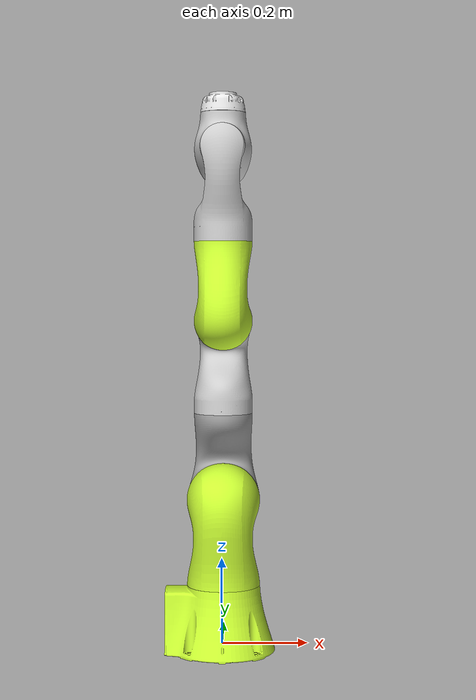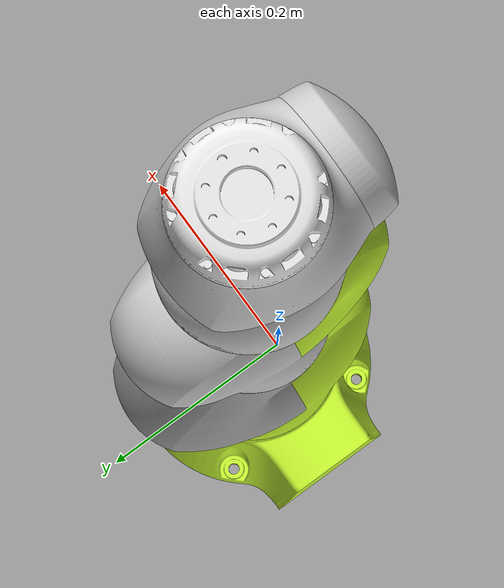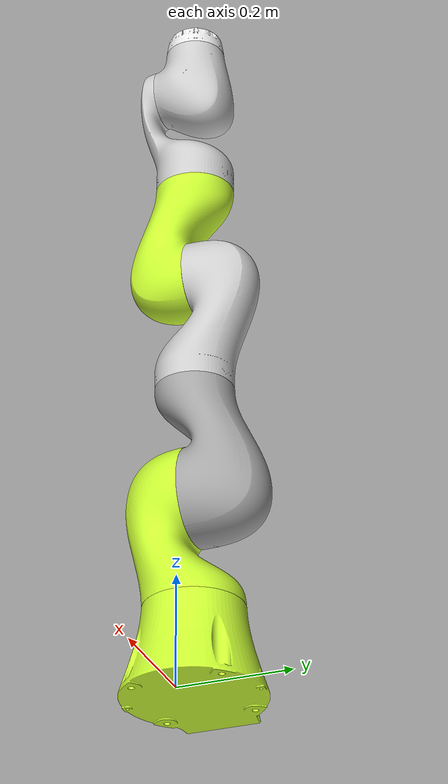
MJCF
<mujoco model="robot">
	<compiler angle="radian" autolimits="true" eulerseq="XYZ"/>
	<option integrator="implicitfast"/>
	<asset>

		<mesh file="l0.stl"/>

		<mesh file="l1.stl"/>

		<mesh file="l2.stl"/>

		<mesh file="l3.stl"/>

		<mesh file="l4.stl"/>

		<mesh file="l5.stl"/>

		<mesh file="l6.stl"/>

		<mesh file="l7.stl"/>

		<material name="electric_lime" rgba="0.8 1.0 0.2 1"/>

		<material name="quick_silver" rgba="0.6470588235294118 0.6470588235294118 0.6470588235294118 1"/>

		<material name="silver" rgba="0.8 0.8 0.8 1"/>

		<material name="mercury" rgba="0.9176470588235294 0.9176470588235294 0.9176470588235294 1"/>
	</asset>
	<default>

		<joint axis="0 0 1" type="hinge"/>

		<geom/>

		<default class="joint_1">

			<joint range="-2.9670597283903604 2.9670597283903604"/>

		</default>
		<default class="joint_2">

			<joint range="-2.0943951023931953 2.0943951023931953"/>

		</default>
	</default>
	<worldbody>
		<body name="base" pos="0 0 0" euler="0 0 0">
			<inertial pos="-0.01035107731949609 0.03192923569988471 0.04497926990549461" mass="42.98768750254656" fullinertia="0.1903988096643779 0.24204633327355346 0.2628112127972947 4.845059131105475e-07 0.005311004299230234 -5.6051717850939943e-08"/>
			<geom type="mesh" pos="0.0024707020442987435 0.031929295510053635 -0.026526075098799187" euler="0.0 -0.0 0.0" mesh="l0" material="electric_lime"/>
			<body name="l1" pos="0.0024707020442987504 0.031929295510053635 0.1209739249012008" euler="3.141592653589793 -0.0 -6.043420485784072e-29">
				<joint class="joint_1" name="dof_j11"/>
				<inertial pos="-5.48393368978954e-07 0.03379528857614718 -0.13240387649300087" mass="32.252368538058256" fullinertia="0.258902748850783 0.26120123222902636 0.09676156657994651 3.51731243466588e-07 -9.136048164140038e-07 0.03866152141693182"/>
				<geom type="mesh" pos="0.0 -1.4931491348783655e-31 0.1475" euler="3.141592653589793 -0.0 0.0" mesh="l1" material="electric_lime"/>
				<body name="l2" pos="-5.204170427930421e-18 0.010000000000000002 -0.21250000000000002" euler="-1.5707963267948966 7.888609052210118e-30 -1.1772991650719248e-29">
					<joint class="joint_2" name="dof_j21"/>
					<inertial pos="0.00015560931906714767 0.0588023202941913 -0.05198733353217853" mass="31.019952062412518" fullinertia="0.24016551405095907 0.08647868689608351 0.23878639476140753 0.00025872384255700077 0.00017829567971389603 -0.038360898454444445"/>
					<geom type="mesh" pos="0.00043624370878126394 -0.36 -0.009999999999999877" euler="-1.5707963267948966 -0.0 7.677253948883748e-59" mesh="l2" material="quick_silver"/>
					<body name="l3" pos="-2.5587171270657905e-17 0.1944999999999994 -0.010000000000000182" euler="1.5707963267948963 -1.7536292513590305e-16 -5.204170427931193e-17">
						<joint class="joint_1" name="dof_j31"/>
						<inertial pos="6.336790494515675e-07 -0.029563690547167298 -0.13650514421399274" mass="24.924609587484266" fullinertia="0.19686717680640578 0.186889631475395 0.059720985474427925 4.314951133358754e-07 1.0570799648138968e-06 -0.038258223329299595"/>
						<geom type="mesh" pos="2.168404344971009e-18 4.3018324496289725e-18 0.5545" euler="3.141592653589793 -3.498908159048841e-33 0.0" mesh="l3" material="silver"/>
						<body name="l4" pos="2.168404344971009e-18 -0.010500000000000008 -0.22549999999999903" euler="1.5707963267948966 -8.361759319911739e-32 1.875546704921647e-24">
							<joint class="joint_2" name="dof_j41"/>
							<inertial pos="1.557949561600884e-06 -0.0674206418439649 -0.044765145086959585" mass="21.505090575790533" fullinertia="0.13504568340927875 0.048185429013458916 0.12869367924899325 8.106913392334387e-07 1.8855174843996352e-07 0.02234980562131776"/>
							<geom type="mesh" pos="0.0 0.7800000000000001 -0.010500000000000013" euler="1.5707963267948966 -0.0 -1.1233243501650246e-33" mesh="l4" material="electric_lime"/>
							<body name="l5" pos="-4.336808689942018e-19 -0.17449999999999988 -0.010500000000000016" euler="-1.5707963267948966 2.0362472116017367e-29 1.5765984860918554e-30">
								<joint class="joint_1" name="dof_j51"/>
								<inertial pos="-0.00012006809820828806 0.02138958512371306 -0.08547343539791841" mass="13.294298180252586" fullinertia="0.07911396213211597 0.06830701557184746 0.035077492654825806 -1.2771822057560868e-05 5.82602920038757e-06 0.024257679034287948"/>
								<geom type="mesh" pos="2.168404344971009e-18 -2.637061458344068e-18 0.9545" euler="3.141592653589793 1.1233243501683199e-33 0.0" mesh="l5" material="silver"/>
								<body name="l6" pos="-6.505213034913027e-16 0.07069999999999989 -0.22550000000000314" euler="-1.5707963267948963 -1.807581861967825e-15 1.0378864090540576e-15">
									<joint class="joint_2" name="dof_j61"/>
									<inertial pos="-6.106347671683861e-07 0.0005734026546835302 -0.07103657781028404" mass="14.196752121138323" fullinertia="0.03841788982992332 0.027994846496755495 0.036778587792932915 6.767287473925427e-08 -5.935303711667572e-07 -0.001918455036020094"/>
									<geom type="mesh" pos="0.0 -1.18 -0.0707" euler="-1.5707963267948966 -0.0 -8.728082876802069e-32" mesh="l6" material="silver"/>
									<body name="l7" pos="4.185020385794047e-16 0.07110000000001193 -0.07070000000000101" euler="-1.570796326794896 4.3239879992521566e-15 -3.141592653589793">
										<joint name="dof_j71" range="-3.0543261909900767 3.0543261909900767"/>
										<inertial pos="3.961998951687257e-06 1.9652899206200954e-08 -0.027185443960992872" mass="2.4182903563202385" fullinertia="0.0017223723112730549 0.001695323517714845 0.0026272709862156162 6.152360059049978e-10 2.390517868080172e-07 7.501244200148256e-10"/>
										<geom type="mesh" pos="0.0 1.6218303025255002e-18 1.2511" euler="3.141592653589793 9.686374377277331e-32 0.0" mesh="l7" material="mercury"/>
									</body>
								</body>
							</body>
						</body>
					</body>
				</body>
			</body>
		</body>
	</worldbody>
	None
</mujoco>
